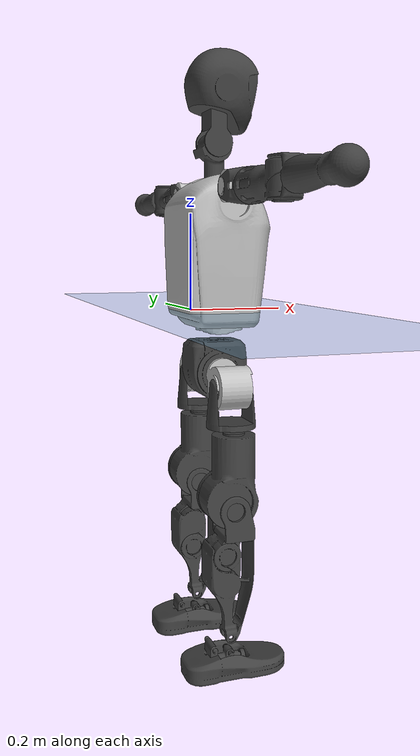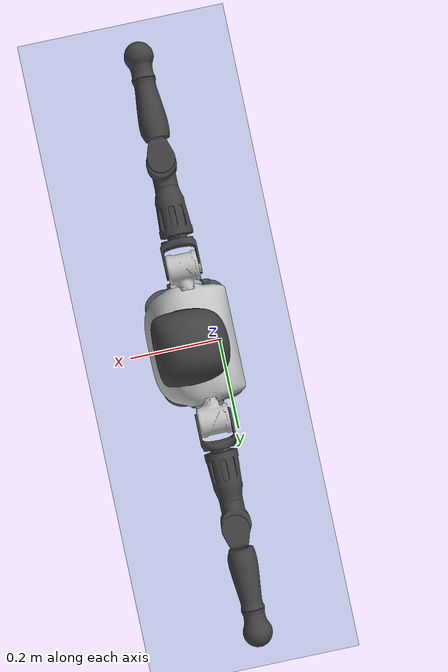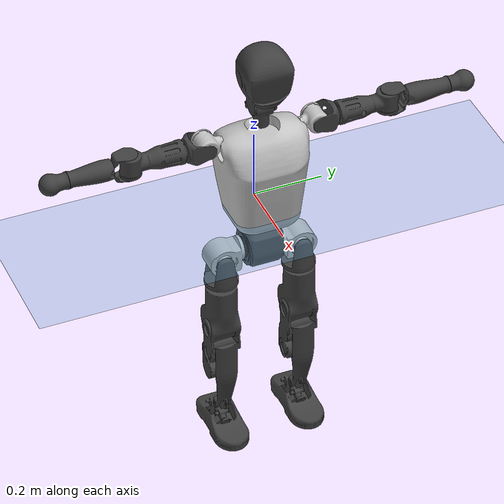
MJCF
<mujoco model="T1">
  <compiler angle="radian" assetdir="assets" balanceinertia="true" inertiafromgeom="false"/>

  <option timestep="0.005" density="1.2" viscosity="2e-05"/>

  <size nkey="1"/>

  <visual>
    <quality shadowsize="8192"/>
    <map shadowclip="0.5"/>
  </visual>

  <default>
    <default class="/">
      <joint armature="0.01" damping="0.01" frictionloss="0.1"/>
      <geom contype="0" conaffinity="0" group="1" solref="-1000 -80"/>
      <site size="0.01 0.005 0.005" group="5"/>
      <general forcelimited="true" biastype="affine" gainprm="25" biasprm="0 -25 -0.6"/>
      <default class="t1">
        <geom rgba="0.25 0.25 0.25 1"/>
        <default class="visual">
          <geom type="mesh" group="2"/>
        </default>
        <default class="collision">
          <geom group="3"/>
        </default>
        <default class="foot">
          <geom size="0.1115 0.05 0.015" type="box" condim="6" group="4" priority="1" solimp="0.015 1 0.015"/>
        </default>
        <default class="reward_collision_sphere">
          <geom group="5" rgba="1 0 0 1"/>
        </default>
      </default>
    </default>
  </default>

  <asset>
    <texture type="skybox" colorspace="auto" name="//unnamed_texture_0" builtin="gradient" rgb1="0.95 0.95 0.95" rgb2="0.95 0.95 0.95" width="100" height="600"/>
    <texture type="2d" colorspace="auto" name="texplane" builtin="checker" rgb1="0.345 0.575 0.748" rgb2="0.345 0.575 0.748" markrgb="1 1 1" width="512" height="512"/>
    <material name="MatPlane" class="/" texture="texplane" texuniform="true" texrepeat="2 2" specular="0.9"/>
    <mesh name="Trunk" class="/" file="Trunk.stl"/>
    <mesh name="H1" class="/" file="H1.stl"/>
    <mesh name="H2" class="/" file="H2.stl"/>
    <mesh name="AL1" class="/" file="AL1.stl"/>
    <mesh name="AL2" class="/" file="AL2.stl"/>
    <mesh name="AL3" class="/" file="AL3.stl"/>
    <mesh name="left_hand_link" class="/" file="left_hand_link.stl"/>
    <mesh name="AR1" class="/" file="AR1.stl"/>
    <mesh name="AR2" class="/" file="AR2.stl"/>
    <mesh name="AR3" class="/" file="AR3.stl"/>
    <mesh name="right_hand_link" class="/" file="right_hand_link.stl"/>
    <mesh name="Waist" class="/" file="Waist.stl"/>
    <mesh name="Hip_Pitch_Left" class="/" file="Hip_Pitch_Left.stl"/>
    <mesh name="Hip_Roll_Left" class="/" file="Hip_Roll_Left.stl"/>
    <mesh name="Hip_Yaw_Left" class="/" file="Hip_Yaw_Left.stl"/>
    <mesh name="Shank_Left" class="/" file="Shank_Left.stl"/>
    <mesh name="Ankle_Cross_Left" class="/" file="Ankle_Cross_Left.stl"/>
    <mesh name="left_foot_link" class="/" file="left_foot_link.stl"/>
    <mesh name="Hip_Pitch_Right" class="/" file="Hip_Pitch_Right.stl"/>
    <mesh name="Hip_Roll_Right" class="/" file="Hip_Roll_Right.stl"/>
    <mesh name="Hip_Yaw_Right" class="/" file="Hip_Yaw_Right.stl"/>
    <mesh name="Shank_Right" class="/" file="Shank_Right.stl"/>
    <mesh name="Ankle_Cross_Right" class="/" file="Ankle_Cross_Right.stl"/>
    <mesh name="right_foot_link" class="/" file="right_foot_link.stl"/>
  </asset>

  <worldbody>
    <geom name="floor" class="/" size="100 100 0.125" type="plane" group="0" material="MatPlane"/>
    <light name="toplight_shadow" class="/" pos="0 0 5" dir="0.0990148 0.0990148 -0.990148" type="directional" ambient="0.04 0.04 0.04" diffuse="0.55 0.55 0.55" specular="0.12 0.12 0.12"/>
    <light name="toplight_fill" class="/" pos="0 0 5" dir="0.0990148 0.0990148 -0.990148" type="directional" castshadow="false" ambient="0.04 0.04 0.04" diffuse="0.3 0.3 0.3" specular="0.08 0.08 0.08"/>
    <body name="trunk" childclass="t1" pos="-0.000555284 -0.000117735 -0.000172774" quat="0.999999 0.00105047 0.000629991 0.000326622">
      <inertial pos="0.0432888 -0.00289412 0.119055" quat="0.999948 -0.00228769 -0.00990672 -0.000423272" mass="11.6224" diaginertia="0.0373217 0.0955621 0.100234"/>
      <joint name="//unnamed_joint_0" type="free" armature="0" damping="0" frictionloss="0"/>
      <geom name="//unnamed_geom_1" class="visual" rgba="0.76 0.76 0.76 1" mesh="Trunk"/>
      <geom name="//unnamed_geom_2" class="collision" size="0.0752032 0.100271 0.150406" pos="0.0499655 0 0.13575" type="box"/>
      <geom name="//unnamed_geom_3" class="reward_collision_sphere" size="0.115312" pos="0.0499655 0 0.113125"/>
      <geom name="//unnamed_geom_4" class="reward_collision_sphere" size="0.0150406" pos="0.0499655 0.0887498 0"/>
      <geom name="//unnamed_geom_5" class="reward_collision_sphere" size="0.0150406" pos="0.0499655 -0.0887498 0"/>
      <geom name="//unnamed_geom_6" class="reward_collision_sphere" size="0.0150406" pos="0.0499655 0.11172 0.203625"/>
      <geom name="//unnamed_geom_7" class="reward_collision_sphere" size="0.0150406" pos="0.0499655 -0.11172 0.203625"/>
      <site name="imu" pos="0.00681148 -0.00501345 -0.00688122" size="0.0100271"/>
      <camera name="track" pos="0 -2.08823 0" quat="0.707107 0.707107 0 0" mode="trackcom"/>
      <camera name="ego_camera" pos="0.101596 0 0.475126" quat="-0.5 -0.5 0.5 0.5"/>
      <body name="H1" pos="0.0513661 -0.000281652 0.273703" quat="1 0.00017274 -0.000257878 8.30971e-05">
        <inertial pos="-0.00203606 0.000955223 0.0647333" quat="0.762189 -0.00990231 0.0134947 0.647139" mass="0.441247" diaginertia="9.51332e-05 0.00026561 0.000264668"/>
        <joint name="AAHead_yaw" pos="0 0 0" axis="0.00760735 -0.00962261 0.999925" stiffness="0.00877814" range="-1.55007 1.58123" armature="0.00962295" damping="0.0084667" frictionloss="0.101133"/>
        <geom name="//unnamed_geom_8" class="visual" mesh="H1"/>
        <body name="H2" pos="0.000107711 0.00234473 0.0709161" quat="1 2.49411e-05 0.000341584 0.000131149">
          <inertial pos="0.005957 0.00323032 0.111025" quat="0.988265 0.108858 -0.0748245 -0.0766988" mass="0.632034" diaginertia="0.000834312 0.0023463 0.00318692"/>
          <joint name="Head_pitch" pos="0 0 0" axis="-0.00136142 -0.999997 0.00187421" range="-1.22631 0.350899" armature="0.00872592" damping="0.00767851" frictionloss="0.113432"/>
          <geom name="//unnamed_geom_9" class="visual" mesh="H2"/>
          <geom name="//unnamed_geom_10" class="collision" size="0.0802167" pos="0.00832758 0 0.124438"/>
          <geom name="//unnamed_geom_11" class="reward_collision_sphere" size="0.0902438" pos="0.0166552 0 0.113125"/>
        </body>
      </body>
      <body name="AL1" pos="0.0500311 0.110235 0.245325" quat="1 -3.97659e-05 0.000387978 4.47585e-05">
        <inertial pos="-0.00327198 0.0469427 0.00129132" quat="0.504035 0.495164 -0.504829 0.495892" mass="0.538905" diaginertia="0.000550469 0.00161442 0.000534915"/>
        <joint name="Left_Shoulder_Pitch" pos="0 0 0" axis="0.0136419 0.999904 -0.00253241" range="-3.30072 1.21921" armature="0.0104083" damping="0.00725885" frictionloss="0.0987573"/>
        <geom name="//unnamed_geom_12" class="visual" rgba="0.76 0.76 0.76 1" mesh="AL1"/>
        <body name="AL2" pos="-0.000394615 0.0483025 -0.00159163" quat="1 1.92868e-05 -6.86606e-05 -8.85726e-06">
          <inertial pos="0.00357318 0.0394209 -0.00240188" quat="0.487819 0.509161 -0.495487 0.507229" mass="0.158704" diaginertia="0.000158687 0.000426387 0.000324539"/>
          <joint name="Left_Shoulder_Roll" pos="0 0 0" axis="-0.999996 0.00274456 -0.000125898" stiffness="0.000479152" range="-1.57916 1.73324" armature="0.0102398" damping="0.00296057" frictionloss="0.101778"/>
          <geom name="//unnamed_geom_13" class="visual" mesh="AL2"/>
          <body name="AL3" pos="0.000954223 0.0632921 0.000369904" quat="1 0.000146446 -8.14074e-05 0.000422434">
            <inertial pos="-0.00115201 0.0892399 -0.000118098" quat="0.709648 0.704451 0.00423171 0.0113931" mass="1.03549" diaginertia="0.00520324 0.0160688 0.00112295"/>
            <joint name="Left_Elbow_Pitch" pos="0 0 0" axis="-0.00126956 -0.999999 0.000300445" range="-2.25358 2.28371" armature="0.010146" damping="0.0236897" frictionloss="0.11345"/>
            <geom name="//unnamed_geom_14" class="visual" mesh="AL3"/>
            <geom name="//unnamed_geom_15" class="collision" size="0.0300813 0.0752032" pos="0 0.0522058 0" quat="0.707105 0.707108 0 0" type="cylinder"/>
            <geom name="//unnamed_geom_16" class="reward_collision_sphere" size="0.0360975"/>
            <body name="left_hand_link" pos="0.00288943 0.15514 0.00215428" quat="1 0.000269897 0.000215906 0.000102827">
              <inertial pos="0.00227388 0.113265 -0.00180716" quat="0.707915 0.706282 -0.00466082 0.000384009" mass="0.329061" diaginertia="0.00324758 0.0103805 0.000408258"/>
              <joint name="Left_Elbow_Yaw" pos="0 0 0" axis="0.00256336 0.000525777 0.999997" range="-2.44278 0.0232902" armature="0.0105317" damping="0.0119737" frictionloss="0.100587"/>
              <geom name="//unnamed_geom_17" class="visual" mesh="left_hand_link"/>
              <geom name="//unnamed_geom_18" class="collision" size="0.0300813 0.087737" pos="0 0.135735 0" quat="0.707105 0.707108 0 0" type="cylinder"/>
              <geom name="//unnamed_geom_19" class="reward_collision_sphere" size="0.0501354"/>
              <geom name="//unnamed_geom_20" class="reward_collision_sphere" size="0.0350948" pos="0 0.114853 0"/>
              <geom name="//unnamed_geom_21" class="reward_collision_sphere" size="0.0350948" pos="0 0.224485 0"/>
            </body>
          </body>
        </body>
      </body>
      <body name="AR1" pos="0.0475651 -0.111185 0.246873" quat="0.999999 -0.00065279 0.000873132 0.00100555">
        <inertial pos="-0.00150667 -0.0468155 -0.000392436" quat="0.504546 0.495786 -0.504294 0.495295" mass="0.553088" diaginertia="0.000553052 0.00164787 0.000562612"/>
        <joint name="Right_Shoulder_Pitch" pos="0 0 0" axis="-0.00301204 -0.999993 0.00217701" range="-1.20708 3.30391" armature="0.010468" damping="0.00207276" frictionloss="0.101699"/>
        <geom name="//unnamed_geom_22" class="visual" rgba="0.76 0.76 0.76 1" mesh="AR1"/>
        <body name="AR2" pos="-0.000618031 -0.0484067 -0.0026345" quat="0.999999 -4.59383e-05 -0.000850066 0.000854157">
          <inertial pos="0.00387693 -0.0403651 0.000944348" quat="0.517163 0.484326 -0.509509 0.488232" mass="0.158498" diaginertia="0.000157792 0.000422842 0.000322988"/>
          <joint name="Right_Shoulder_Roll" pos="0 0 0" axis="-0.999992 -0.0026459 0.00285709" range="-1.7352 1.57313" armature="0.0100406" damping="0" frictionloss="0.101407"/>
          <geom name="//unnamed_geom_23" class="visual" mesh="AR2"/>
          <body name="AR3" pos="-0.00175918 -0.0637319 -0.000817395" quat="0.999999 -0.000227474 0.000952094 0.000739826">
            <inertial pos="0.00226891 -0.0886685 -0.000329183" quat="0.706862 0.707342 -0.00351456 -0.0013873" mass="1.02693" diaginertia="0.00526612 0.0164333 0.00117494"/>
            <joint name="Right_Elbow_Pitch" pos="0 0 0" axis="0.000565579 0.999998 -0.00202192" stiffness="0.0016687" range="-2.25731 2.21701" armature="0.0103481" damping="0.0101389" frictionloss="0.100484"/>
            <geom name="//unnamed_geom_24" class="visual" mesh="AR3"/>
            <geom name="//unnamed_geom_25" class="collision" size="0.0300813 0.0752032" pos="0 -0.0522058 0" quat="0.707105 0.707108 0 0" type="cylinder"/>
            <geom name="//unnamed_geom_26" class="reward_collision_sphere" size="0.0360975"/>
            <body name="right_hand_link" pos="-0.00152463 -0.154416 0.001628" quat="0.999999 0.00111679 8.44074e-06 -0.00014099">
              <inertial pos="0.00215158 -0.115216 -0.0013661" quat="0.706957 0.707255 0.00100553 0.00124969" mass="0.314883" diaginertia="0.00305637 0.00962856 0.000397371"/>
              <joint name="Right_Elbow_Yaw" pos="0 0 0" axis="0.00520472 -0.000983326 0.999986" range="0.00287625 2.39096" armature="0.0103629" damping="0.00398737" frictionloss="0.100387"/>
              <geom name="//unnamed_geom_27" class="visual" mesh="right_hand_link"/>
              <geom name="//unnamed_geom_28" class="collision" size="0.0300813 0.087737" pos="0 -0.135735 0" quat="0.707105 0.707108 0 0" type="cylinder"/>
              <geom name="//unnamed_geom_29" class="reward_collision_sphere" size="0.0501354"/>
              <geom name="//unnamed_geom_30" class="reward_collision_sphere" size="0.0350948" pos="0 -0.114853 0"/>
              <geom name="//unnamed_geom_31" class="reward_collision_sphere" size="0.0350948" pos="0 -0.224485 0"/>
            </body>
          </body>
        </body>
      </body>
      <body name="Waist" pos="0.0507169 -0.00310222 -0.13026" quat="1 2.03385e-05 0.000386651 0.000307997">
        <inertial pos="0.000419389 0.0013009 0.00863544" quat="0.984074 -0.00587313 -0.177654 -0.00144488" mass="2.50578" diaginertia="0.00215353 0.00646706 0.0084981"/>
        <joint name="Waist" pos="0 0 0" axis="-0.00184978 0.004657 0.999987" range="-1.56594 1.58082" armature="0.0101247" damping="0.000280008" frictionloss="0.103475"/>
        <geom name="//unnamed_geom_32" class="visual" mesh="Waist"/>
        <body name="Hip_Pitch_Left" pos="0.00246039 0.110887 -0.000261165" quat="1 -0.000162413 0.000196117 -0.000335855">
          <inertial pos="0.00120119 -0.00775476 -0.0230466" quat="0.975957 0.217466 0.0147222 -0.000210424" mass="1.03381" diaginertia="0.000724153 0.00181489 0.00232805"/>
          <joint name="Left_Hip_Pitch" pos="0 0 0" axis="-0.00323199 0.999988 -0.00374241" stiffness="0.000242529" range="-1.816 1.61811" armature="0.0104977" damping="0" frictionloss="0.101541"/>
          <geom name="//unnamed_geom_33" class="visual" rgba="0.76 0.76 0.76 1" mesh="Hip_Pitch_Left"/>
          <body name="Hip_Roll_Left" pos="0.00287881 0.000905036 -0.0247249" quat="1 -0.000129501 -1.91805e-06 0.000117297">
            <inertial pos="0.00159994 0.000619566 -0.0629113" quat="0.707699 -0.00550432 -0.00611051 0.706466" mass="0.396364" diaginertia="0.000732126 0.00188043 0.000952185"/>
            <joint name="Left_Hip_Roll" pos="0 0 0" axis="-0.999999 0.00114792 -6.22763e-06" range="-1.56072 0.252852" armature="0.00962114" damping="0.00537877" frictionloss="0.100015"/>
            <geom name="//unnamed_geom_34" class="visual" mesh="Hip_Roll_Left"/>
            <geom name="//unnamed_geom_35" class="reward_collision_sphere" size="0.055149"/>
            <body name="Hip_Yaw_Left" pos="5.23634e-06 0.00208535 -0.0907632" quat="1 -0.000161482 0.000123274 -3.0217e-05">
              <inertial pos="-0.0061604 6.25303e-05 -0.101849" quat="0.69534 -0.0356584 -0.0426013 0.716531" mass="2.13422" diaginertia="0.0101998 0.0304087 0.00481319"/>
              <joint name="Left_Hip_Yaw" pos="0 0 0" axis="0.00185706 0.00166473 -0.999997" range="-0.985591 1.05811" armature="0.0103463" damping="0" frictionloss="0.0986588"/>
              <geom name="//unnamed_geom_36" class="visual" mesh="Hip_Yaw_Left"/>
              <geom name="//unnamed_geom_37" class="collision" size="0.0501354 0.0802167" type="cylinder"/>
              <body name="Shank_Left" pos="-0.0114606 0.00107756 -0.154401" quat="1 2.70442e-05 1.32551e-05 4.69518e-06">
                <inertial pos="-0.00497757 0.000452503 -0.142792" quat="0.997657 0.00157957 -0.0275552 0.0626021" mass="1.76819" diaginertia="0.0140601 0.0426409 0.00335742"/>
                <joint name="Left_Knee_Pitch" pos="0 0 0" axis="-0.00468561 0.999986 -0.00237933" stiffness="0.0065756" range="0.0118326 2.34264" armature="0.0101147" damping="0.0141332" frictionloss="0.105496"/>
                <geom name="//unnamed_geom_38" class="visual" mesh="Shank_Left"/>
                <geom name="//unnamed_geom_39" class="collision" size="0.0501354 0.0752032" pos="0 0 -0.13575" type="cylinder"/>
                <geom name="//unnamed_geom_40" class="reward_collision_sphere" size="0.0651761"/>
                <body name="Ankle_Cross_Left" pos="0.000437725 0.000553539 -0.319039" quat="1 0.000353936 -0.000484806 -0.000205801">
                  <inertial pos="-0.00545353 0.00264518 -0.00882296" quat="0.444285 0.551036 0.551015 0.441987" mass="0.071776" diaginertia="1.16087e-05 3.06841e-05 2.10218e-05"/>
                  <joint name="Left_Ankle_Pitch" pos="0 0 0" axis="0.00762053 0.999956 -0.00554988" range="-0.894048 0.328941" armature="0.00884843" damping="0.00474235" frictionloss="0.103225"/>
                  <geom name="//unnamed_geom_41" class="visual" mesh="Ankle_Cross_Left"/>
                  <body name="left_foot_link" pos="0.000627642 -9.87323e-05 -0.0115828" quat="0.999999 0.000834095 0.000635117 0.000895087">
                    <inertial pos="-0.00267169 0.000177586 -0.00963024" quat="-0.00147461 0.620255 0.00108531 0.784398" mass="0.678798" diaginertia="0.00108193 0.00290496 0.00412891"/>
                    <joint name="Left_Ankle_Roll" pos="0 0 0" axis="-1 0.000361787 0.000268171" range="-0.489843 0.389571" armature="0.0102784" damping="0.0120033" frictionloss="0.0877124"/>
                    <geom name="//unnamed_geom_42" class="visual" mesh="left_foot_link"/>
                    <geom name="left_foot" class="foot" size="0.10529 0.0489752 0.0155446" pos="0.00832758 0 -0.0169688"/>
                    <geom name="//unnamed_geom_44" class="reward_collision_sphere" size="0.0521409" pos="0.00832758 0 -0.0169688"/>
                    <geom name="//unnamed_geom_45" class="reward_collision_sphere" size="0.0300813" pos="0.079112 -0.0240147 -0.0169688"/>
                    <geom name="//unnamed_geom_46" class="reward_collision_sphere" size="0.0300813" pos="-0.0582931 -0.0240147 -0.0169688"/>
                    <site name="left_foot" class="foot" pos="0.00832758 0 -0.0169688" size="0.0100271"/>
                  </body>
                </body>
              </body>
            </body>
          </body>
        </body>
        <body name="Hip_Pitch_Right" pos="-0.00259862 -0.113109 0.000317232" quat="1 -8.18636e-06 -0.00069135 -0.000295679">
          <inertial pos="-0.000244547 0.00621463 -0.0194034" quat="0.973426 -0.228475 0.0148365 -0.00455738" mass="1.02544" diaginertia="0.000743194 0.00183331 0.00239633"/>
          <joint name="Right_Hip_Pitch" pos="0 0 0" axis="-0.000543085 -0.99999 -0.00452945" stiffness="0.00259909" range="-1.55723 1.80016" armature="0.0107421" damping="0.00594703" frictionloss="0.102472"/>
          <geom name="//unnamed_geom_47" class="visual" rgba="0.76 0.76 0.76 1" mesh="Hip_Pitch_Right"/>
          <body name="Hip_Roll_Right" pos="0.00234202 -0.0025286 -0.024195" quat="1 -5.07085e-05 2.27284e-05 8.59151e-05">
            <inertial pos="0.000170522 -0.000764202 -0.0591526" quat="0.705886 -0.00788104 -0.00486779 0.708265" mass="0.403373" diaginertia="0.000703279 0.0019395 0.000960883"/>
            <joint name="Right_Hip_Roll" pos="0 0 0" axis="-0.999993 0.00142959 0.00338808" stiffness="0.0101037" range="-0.200145 1.5185" armature="0.00955085" damping="0" frictionloss="0.0871925"/>
            <geom name="//unnamed_geom_48" class="visual" mesh="Hip_Roll_Right"/>
            <geom name="//unnamed_geom_49" class="reward_collision_sphere" size="0.055149"/>
            <body name="Hip_Yaw_Right" pos="0.00270252 -0.00177579 -0.0915929" quat="1 0.000288171 -2.93718e-05 3.87122e-05">
              <inertial pos="-0.00517402 -0.00161502 -0.0998423" quat="0.718921 -0.0370092 -0.023421 0.69371" mass="2.17019" diaginertia="0.00996686 0.031639 0.00464271"/>
              <joint name="Right_Hip_Yaw" pos="0 0 0" axis="-0.00729314 0.00695458 -0.999949" stiffness="0.00597257" range="-1.01108 0.993754" armature="0.00911628" damping="0.0158033" frictionloss="0.101636"/>
              <geom name="//unnamed_geom_50" class="visual" mesh="Hip_Yaw_Right"/>
              <geom name="//unnamed_geom_51" class="collision" size="0.0501354 0.0802167" type="cylinder"/>
              <body name="Shank_Right" pos="-0.00889962 0.00018544 -0.152045" quat="1 0.000551322 0.000291075 -5.87676e-05">
                <inertial pos="-0.00504789 0.000199111 -0.139392" quat="0.999187 -0.01133 -0.0175825 -0.0344607" mass="1.82408" diaginertia="0.0145308 0.0438602 0.0037084"/>
                <joint name="Right_Knee_Pitch" pos="0 0 0" axis="-0.0050281 -0.999979 -0.00411838" range="-2.33272 0.0201058" armature="0.0101182" damping="0.0214947" frictionloss="0.0976843"/>
                <geom name="//unnamed_geom_52" class="visual" mesh="Shank_Right"/>
                <geom name="//unnamed_geom_53" class="collision" size="0.0501354 0.0752032" pos="0 0 -0.13575" type="cylinder"/>
                <geom name="//unnamed_geom_54" class="reward_collision_sphere" size="0.0651761"/>
                <body name="Ankle_Cross_Right" pos="0.000466311 -0.000139558 -0.318571" quat="0.999999 0.000188254 -0.000839522 0.000641234">
                  <inertial pos="-0.00307442 0.00229443 -0.00959256" quat="0.443268 0.551327 0.550539 0.443237" mass="0.0733483" diaginertia="1.12277e-05 3.1737e-05 2.05344e-05"/>
                  <joint name="Right_Ankle_Pitch" pos="0 0 0" axis="-0.00419058 -0.999986 -0.00334555" range="-0.402254 0.859516" armature="0.0101715" damping="0.00433508" frictionloss="0.102831"/>
                  <geom name="//unnamed_geom_55" class="visual" mesh="Ankle_Cross_Right"/>
                  <body name="right_foot_link" pos="0.00265748 0.000229208 -0.0132874" quat="1 -0.000195717 -7.6689e-05 -4.05156e-05">
                    <inertial pos="-0.000198768 0.00188732 -0.0101028" quat="0.000249661 0.620742 9.53476e-05 0.784015" mass="0.731803" diaginertia="0.00112328 0.00304355 0.00411192"/>
                    <joint name="Right_Ankle_Roll" pos="0 0 0" axis="-0.999976 0.00499057 -0.00490793" range="-0.423887 0.427332" armature="0.0103189" damping="0.00701361" frictionloss="0.0870732"/>
                    <geom name="//unnamed_geom_56" class="visual" mesh="right_foot_link"/>
                    <geom name="right_foot" class="foot" size="0.100215 0.0481242 0.0153659" pos="0.00832758 0 -0.0169688"/>
                    <geom name="//unnamed_geom_58" class="reward_collision_sphere" size="0.0401083"/>
                    <geom name="//unnamed_geom_59" class="reward_collision_sphere" size="0.0300813" pos="0.00832758 0 -0.0169688"/>
                    <geom name="//unnamed_geom_60" class="reward_collision_sphere" size="0.0300813" pos="0.079112 0.0240147 -0.0169688"/>
                    <geom name="//unnamed_geom_61" class="reward_collision_sphere" size="0.0300813" pos="-0.0582931 0.0240147 -0.0169688"/>
                    <site name="right_foot" class="foot" pos="0.00832758 0 -0.0169688" size="0.0100271"/>
                  </body>
                </body>
              </body>
            </body>
          </body>
        </body>
      </body>
    </body>
  </worldbody>

  <contact>
    <pair class="/" geom1="floor" geom2="left_foot" name="//unnamed_contact_0"/>
    <pair class="/" geom1="floor" geom2="right_foot" name="//unnamed_contact_1"/>
  </contact>

  <actuator>
    <general name="AAHead_yaw" class="/" joint="AAHead_yaw" forcerange="-7.28546 7.28546" gainprm="23.2938" biasprm="0 -23.2938 -0.587979"/>
    <general name="Head_pitch" class="/" joint="Head_pitch" forcerange="-6.7589 6.7589" gainprm="23.2938" biasprm="0 -23.2938 -0.587979"/>
    <general name="Left_Shoulder_Pitch" class="/" joint="Left_Shoulder_Pitch" forcerange="-16.1978 16.1978" gainprm="23.2938" biasprm="0 -23.2938 -0.587979"/>
    <general name="Left_Shoulder_Roll" class="/" joint="Left_Shoulder_Roll" forcerange="-18.2142 18.2142" gainprm="23.2938" biasprm="0 -23.2938 -0.587979"/>
    <general name="Left_Elbow_Pitch" class="/" joint="Left_Elbow_Pitch" forcerange="-18.0978 18.0978" gainprm="23.2938" biasprm="0 -23.2938 -0.587979"/>
    <general name="Left_Elbow_Yaw" class="/" joint="Left_Elbow_Yaw" forcerange="-18.144 18.144" gainprm="23.2938" biasprm="0 -23.2938 -0.587979"/>
    <general name="Right_Shoulder_Pitch" class="/" joint="Right_Shoulder_Pitch" forcerange="-18.6975 18.6975" gainprm="23.2938" biasprm="0 -23.2938 -0.587979"/>
    <general name="Right_Shoulder_Roll" class="/" joint="Right_Shoulder_Roll" forcerange="-18.344 18.344" gainprm="23.2938" biasprm="0 -23.2938 -0.587979"/>
    <general name="Right_Elbow_Pitch" class="/" joint="Right_Elbow_Pitch" forcerange="-17.8199 17.8199" gainprm="23.2938" biasprm="0 -23.2938 -0.587979"/>
    <general name="Right_Elbow_Yaw" class="/" joint="Right_Elbow_Yaw" forcerange="-17.6885 17.6885" gainprm="23.2938" biasprm="0 -23.2938 -0.587979"/>
    <general name="Waist" class="/" joint="Waist" forcerange="-29.9747 29.9747" gainprm="23.2938" biasprm="0 -23.2938 -0.587979"/>
    <general name="Left_Hip_Pitch" class="/" joint="Left_Hip_Pitch" forcerange="-44.3755 44.3755" gainprm="23.2938" biasprm="0 -23.2938 -0.587979"/>
    <general name="Left_Hip_Roll" class="/" joint="Left_Hip_Roll" forcerange="-29.8867 29.8867" gainprm="23.2938" biasprm="0 -23.2938 -0.587979"/>
    <general name="Left_Hip_Yaw" class="/" joint="Left_Hip_Yaw" forcerange="-29.8212 29.8212" gainprm="23.2938" biasprm="0 -23.2938 -0.587979"/>
    <general name="Left_Knee_Pitch" class="/" joint="Left_Knee_Pitch" forcerange="-58.5437 58.5437" gainprm="23.2938" biasprm="0 -23.2938 -0.587979"/>
    <general name="Left_Ankle_Pitch" class="/" joint="Left_Ankle_Pitch" forcerange="-22.0084 22.0084" gainprm="23.2938" biasprm="0 -23.2938 -0.587979"/>
    <general name="Left_Ankle_Roll" class="/" joint="Left_Ankle_Roll" forcerange="-13.6916 13.6916" gainprm="23.2938" biasprm="0 -23.2938 -0.587979"/>
    <general name="Right_Hip_Pitch" class="/" joint="Right_Hip_Pitch" forcerange="-46.0845 46.0845" gainprm="23.2938" biasprm="0 -23.2938 -0.587979"/>
    <general name="Right_Hip_Roll" class="/" joint="Right_Hip_Roll" forcerange="-32.7528 32.7528" gainprm="23.2938" biasprm="0 -23.2938 -0.587979"/>
    <general name="Right_Hip_Yaw" class="/" joint="Right_Hip_Yaw" forcerange="-28.194 28.194" gainprm="23.2938" biasprm="0 -23.2938 -0.587979"/>
    <general name="Right_Knee_Pitch" class="/" joint="Right_Knee_Pitch" forcerange="-57.1494 57.1494" gainprm="23.2938" biasprm="0 -23.2938 -0.587979"/>
    <general name="Right_Ankle_Pitch" class="/" joint="Right_Ankle_Pitch" forcerange="-19.6296 19.6296" gainprm="23.2938" biasprm="0 -23.2938 -0.587979"/>
    <general name="Right_Ankle_Roll" class="/" joint="Right_Ankle_Roll" forcerange="-16.2478 16.2478" gainprm="23.2938" biasprm="0 -23.2938 -0.587979"/>
  </actuator>

  <sensor>
    <gyro site="imu" name="imu_angular_velocity"/>
    <velocimeter site="imu" name="imu_linear_velocity"/>
    <framelinvel objtype="site" objname="left_foot" name="left_foot_global_linear_velocity"/>
    <framelinvel objtype="site" objname="right_foot" name="right_foot_global_linear_velocity"/>
  </sensor>

  <keyframe>
    <key name="home" qpos="0 0 0.6385 1 0 0 0 0 0 0 1.4 0 -0.4 0 -1.4 0 0.4 0 -0.4 0 0 0.8 -0.4 0 0.4 0 0 -0.8 0.4 0"/>
  </keyframe>
</mujoco>
